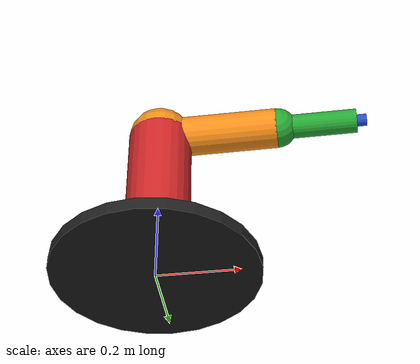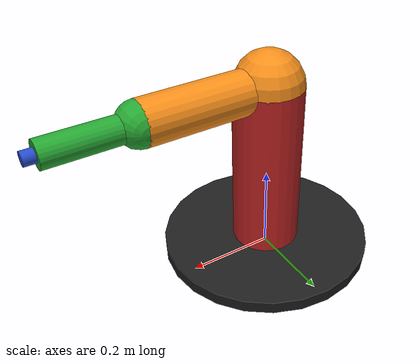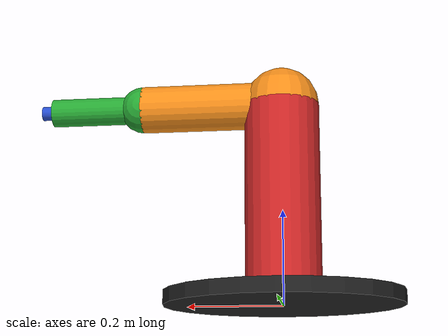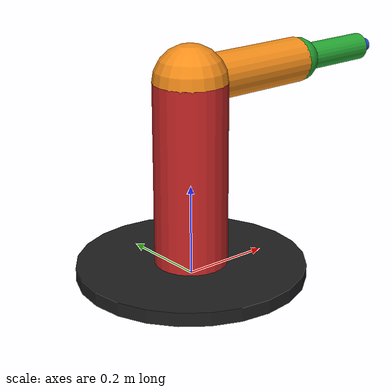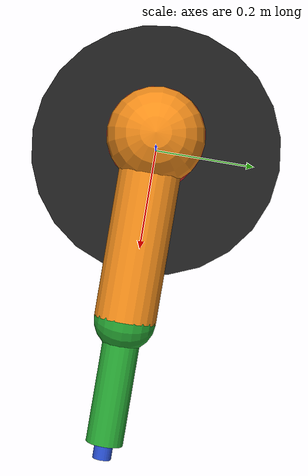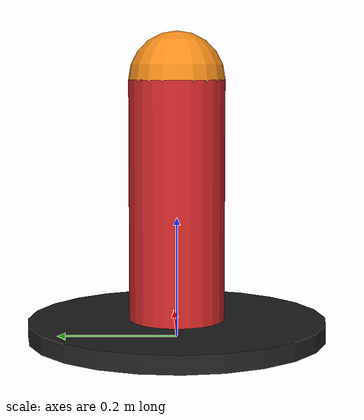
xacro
<?xml version='1.0'?>
<robot name="robot_ipsa" xmlns:xacro="http://www.ros.org/wiki/xacro">
    <xacro:include filename="$(find in426_desc)/xacro/material.xacro"/>
    <xacro:include filename="$(find in426_desc)/xacro/Robot_1/robot_1_ros2_control.xacro"/>
    <xacro:include filename="$(find in426_desc)/xacro/Robot_1/robot_1.gazebo"/>

    <!-- VARIABLES -->
    <xacro:property name="base_radius" value="0.25"/>
    <xacro:property name="base_length" value="0.03"/>

    <xacro:property name="link_1_length" value="0.4"/>
    <xacro:property name="link_1_radius" value="0.08"/>

    <xacro:property name="link_2_length" value="0.3"/>
    <xacro:property name="link_2_radius" value="0.05"/>

    <xacro:property name="link_3_length" value="0.2"/>
    <xacro:property name="link_3_radius" value="0.03"/>

    <xacro:property name="link_4_length" value="0.025"/>
    <xacro:property name="link_4_radius" value="0.015"/>

    <!-- MACROS -->
    <xacro:macro name="cylinder_inertial" params="mass radius length o_xyz o_rpy">
        <inertial>
            <origin xyz="${o_xyz}" rpy="${o_rpy}"/>
            <mass value="${mass}"/>
            <inertia ixx="${mass*(3*radius*radius+length*length)/12}" ixy="0.0" ixz="0.0"
			iyy="${mass*(3*radius*radius+length*length)/12}" iyz="0.0" izz="${mass*radius*radius/2}"/>
        </inertial>
    </xacro:macro>

    <!-- *****Base link***** -->
    <link name="world"/>
    <joint name="world_to_base" type="fixed">
        <parent link="world"/>
        <child link="base_link"/>
        <origin xyz="0 0 0"/>
    </joint>

  	<link name="base_link">
		<visual>
			<origin xyz="0 0 ${base_length/2}" rpy="0 0 0"/>
			<geometry>
				<cylinder radius="${base_radius}" length="${base_length}"/>
			</geometry>
			<material name="black"/>
		</visual>
		<collision>
			<origin xyz="0 0 ${base_length/2}" rpy="0 0 0"/>
			<geometry>
				<cylinder radius="${base_radius}" length="${base_length}"/>
			</geometry>
		</collision>
		<cylinder_inertial mass="2" radius="${base_radius}" length="${base_length}" o_xyz="0 0 ${base_length/2}" o_rpy="0 0 0"/>
  	</link>

	<!-- *****LINK 1***** -->
	<link name="link_1">
		<visual>
			<origin xyz="0 0 ${link_1_length/2}" rpy="0 0 0"/>
			<geometry>
				<cylinder radius="${link_1_radius}" length="${link_1_length}"/>
			</geometry>
			<material name="red"/>
		</visual>
		<collision>
			<origin xyz="0 0 ${link_1_length/2}" rpy="0 0 0"/>
			<geometry>
				<cylinder radius="${link_1_radius}" length="${link_1_length}"/>
			</geometry>
		</collision>
		<cylinder_inertial mass="1" radius="${link_1_radius}" length="${link_1_length}" o_xyz="0 0 ${link_1_length/2}" o_rpy="0 0 0"/>
  	</link>
	<joint name="base_to_1" type="revolute">
		<dynamics damping="0.7"/>
		<parent link="base_link"/>
		<child link="link_1"/>
		<origin xyz="0 0 ${base_length}" rpy = "0 0 ${-pi/2}"/>
		<axis xyz="0 0 1"/>
		<limit effort="10" lower="${-pi/2}" upper="${pi/2}" velocity="1"/>
	</joint>

	<!-- *****LINK 2***** -->
	<link name="link_2p">
		<visual>
			<origin xyz="0 0 0" rpy="0 0 0"/>
			<geometry>
				<sphere radius="${link_1_radius}"/>
			</geometry>
			<material name="orange"/>
		</visual>
  	</link>
	<joint name="1_to_2p" type="fixed">
		<parent link="link_1"/>
		<child link="link_2p"/>
		<origin xyz="0 0 ${link_1_length}"/>
		<axis xyz="0 0 1"/>
	</joint>

	<link name="link_2">
		<visual>
			<origin xyz="${link_2_length/2} 0 0" rpy="${pi/2} 0 ${pi/2}"/>
			<geometry>
				<cylinder radius="${link_2_radius}" length="${link_2_length}"/>
			</geometry>
			<material name="orange"/>
		</visual>
		<collision>
			<origin xyz="${link_2_length/2} 0 0" rpy="${pi/2} 0 ${pi/2}"/>
			<geometry>
				<cylinder radius="${link_2_radius}" length="${link_2_length}"/>
			</geometry>
		</collision>
		<cylinder_inertial mass="0.5" radius="${link_2_radius}" length="${link_2_length}" o_xyz="${link_2_length/2} 0 0" o_rpy="${pi/2} 0 ${pi/2}"/>
  	</link>
	<joint name="1_to_2" type="revolute">
		<dynamics damping="0.7"/>
		<parent link="link_1"/>
		<child link="link_2"/>
		<origin xyz="0 0 ${link_1_length}" rpy="${pi/2} 0 ${pi/2}"/>
		<axis xyz="0 0 1"/>
		<limit effort="10" lower="-0.52" upper="${pi/2}" velocity="1"/>
	</joint>

    <!-- *****LINK 3***** -->
	<link name="link_3p">
		<visual>
			<origin xyz="0 0 0" rpy="0 0 0"/>
			<geometry>
				<sphere radius="${link_2_radius}"/>
			</geometry>
			<material name="green"/>
		</visual>
  	</link>
	<joint name="2_to_3p" type="fixed">
		<parent link="link_2"/>
		<child link="link_3p"/>
		<origin xyz="${link_2_length} 0 0"/>
		<axis xyz="0 0 1"/>
	</joint>

	<link name="link_3">
		<visual>
			<origin xyz="${link_3_length/2} 0 0" rpy="${pi/2} ${pi/2} ${pi/2}"/>
			<geometry>
				<cylinder radius="${link_3_radius}" length="${link_3_length}"/>
			</geometry>
			<material name="green"/>
		</visual>
		<collision>
			<origin xyz="${link_3_length/2} 0 0" rpy="${pi/2} ${pi/2} ${pi/2}"/>
			<geometry>
				<cylinder radius="${link_3_radius}" length="${link_3_length}"/>
			</geometry>
		</collision>
		<cylinder_inertial mass="0.5" radius="${link_3_radius}" length="${link_3_length}" o_xyz="${link_3_length/2} 0 0" o_rpy="${pi/2} ${pi/2} ${pi/2}"/>
  	</link>
	<joint name="2_to_3" type="revolute">
		<dynamics damping="0.7"/>
		<parent link="link_2"/>
		<child link="link_3"/>
		<origin xyz="${link_2_length} 0 0" rpy="0 0 0"/>
		<axis xyz="0 0 1"/>
		<limit effort="10" lower="${-pi/2}" upper="0" velocity="1"/>
	</joint>

	<!-- *****LINK 4***** -->
	<link name="link_4">
		<visual>
			<origin xyz="${link_4_length/2} 0 0" rpy="${pi/2} ${pi/2} ${pi/2}"/>
			<geometry>
				<cylinder radius="${link_4_radius}" length="${link_4_length}"/>
			</geometry>
			<material name="blue"/>
		</visual>
		<collision>
			<origin xyz="${link_4_length/2} 0 0" rpy="${pi/2} ${pi/2} ${pi/2}"/>
			<geometry>
				<cylinder radius="${link_4_radius}" length="${link_4_length}"/>
			</geometry>
		</collision>
  	</link>
	<joint name="3_to_4" type="fixed">
		<parent link="link_3"/>
		<child link="link_4"/>
		<origin xyz="${link_3_length} 0 0"/>
		<axis xyz="0 0 1"/>
	</joint>
</robot>
